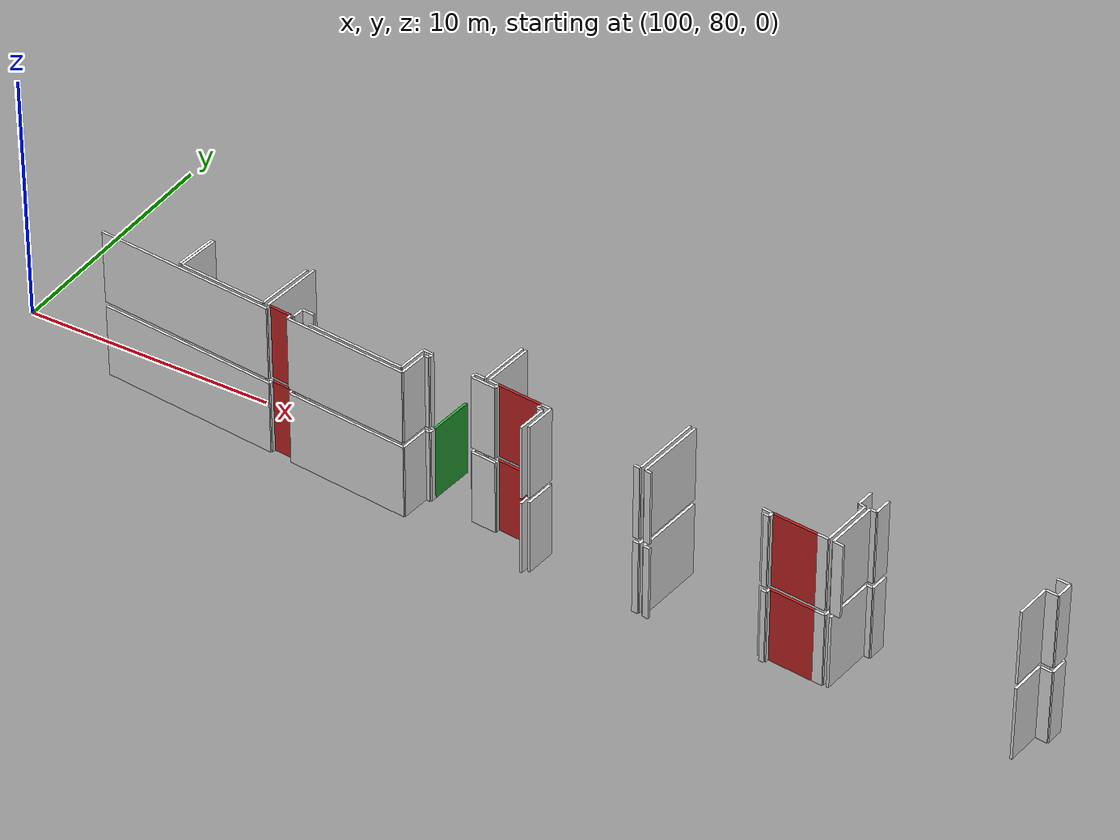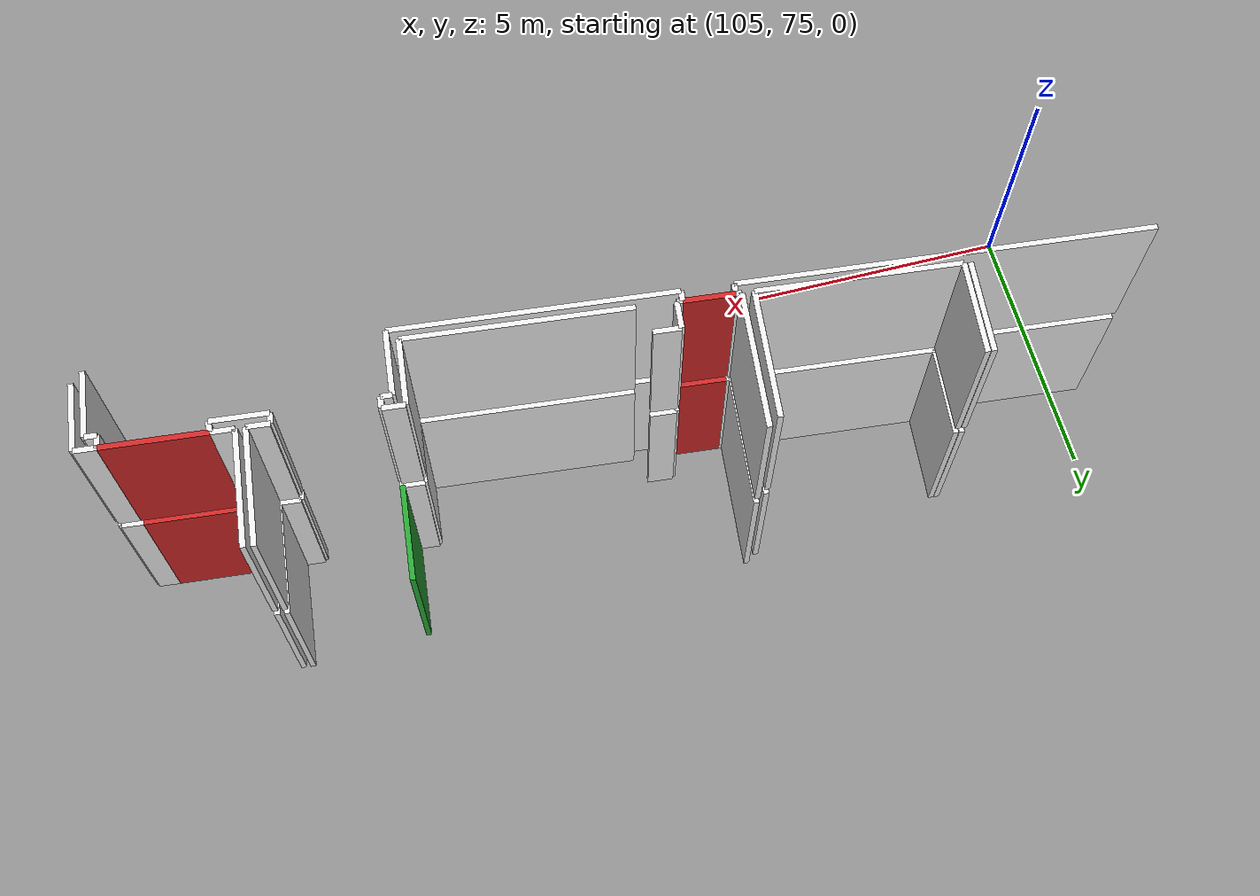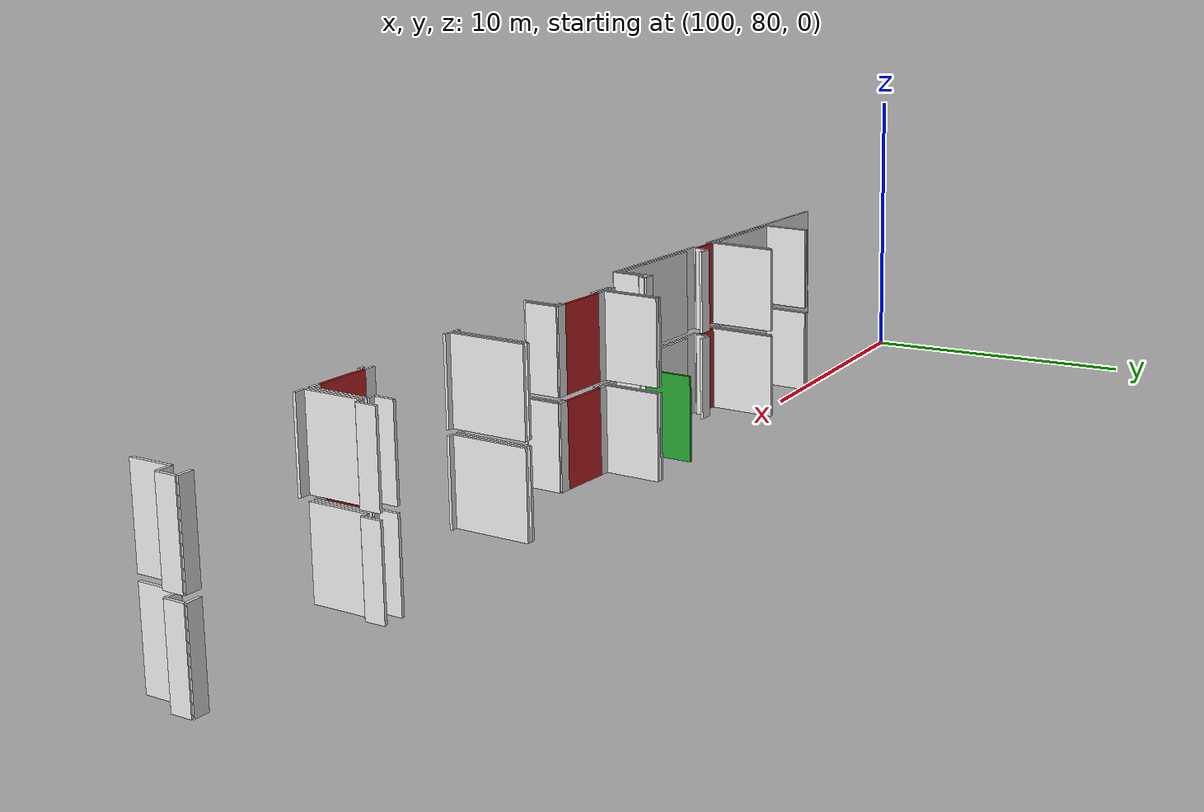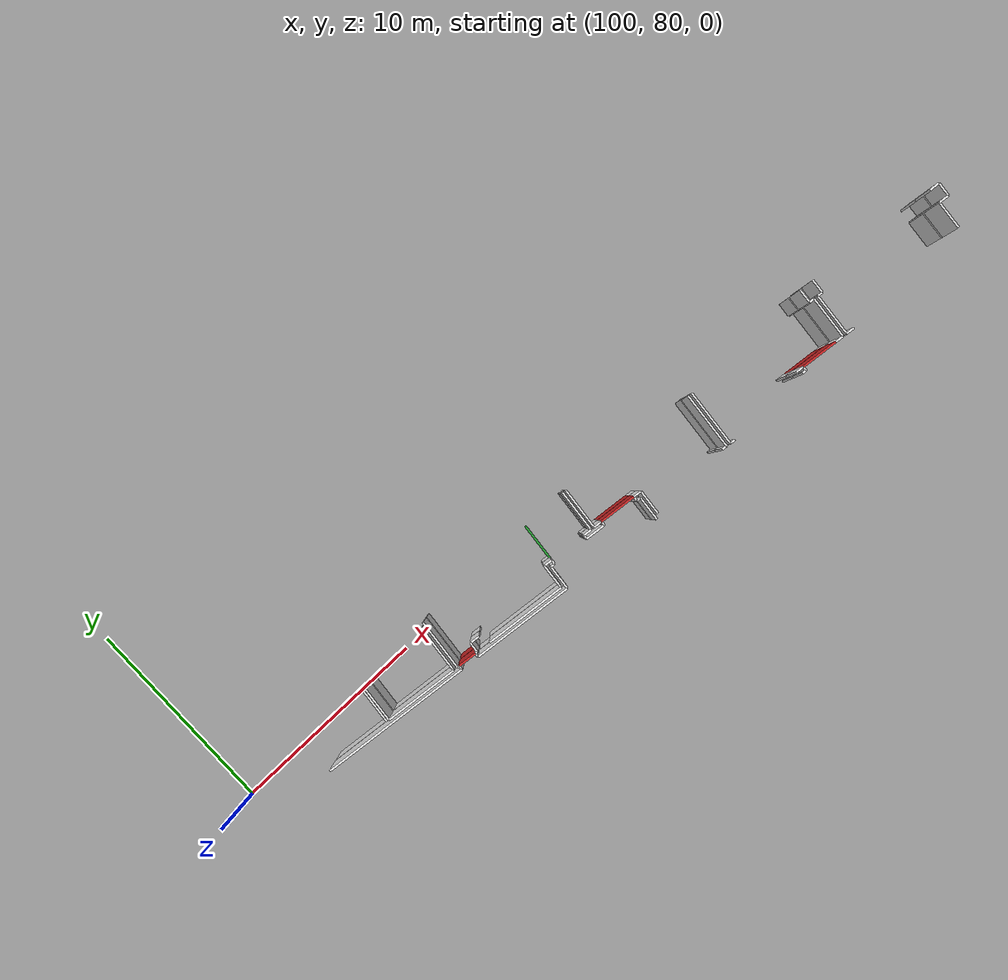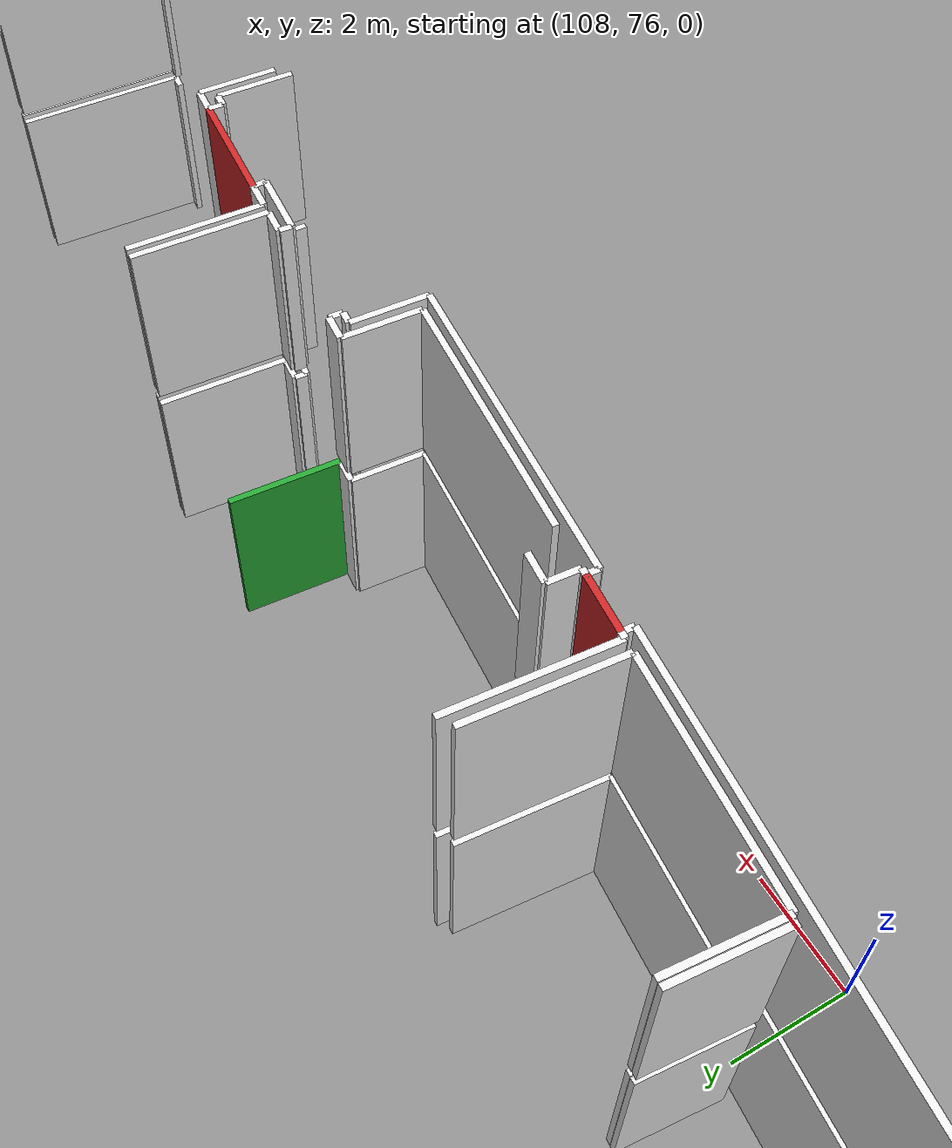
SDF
<sdf version="1.6">
 <world name="default">
  <model name="wall_132.7_77.1_0.0">
   <static>true</static>
   <pose>132.7049999999872 77.07000000006519 1.5 0 0 -0.10022174987377463</pose>
   <link name="link">
    <visual name="visual">
     <geometry><box><size>1.7990275150717767 0.1 3</size></box></geometry>
     <material>
      <script><uri>file://media/materials/scripts/gazebo.material</uri><name>Gazebo/Red</name></script>
     </material>
    </visual>
   </link>
  </model>
  <model name="wall_112.2_77.9_0.0">
   <static>true</static>
   <pose>112.1699999999837 77.92500000004657 1.5 0 0 -0.09966865283695012</pose>
   <link name="link">
    <visual name="visual">
     <geometry><box><size>0.9044888059555555 0.1 3</size></box></geometry>
     <material>
      <script><uri>file://media/materials/scripts/gazebo.material</uri><name>Gazebo/Red</name></script>
     </material>
    </visual>
   </link>
  </model>
  <model name="wall_121.5_78.2_0.0">
   <static>true</static>
   <pose>121.54000000000815 78.20999999996275 1.5 0 0 -0.09966865232787321</pose>
   <link name="link">
    <visual name="visual">
     <geometry><box><size>1.808977611760522 0.1 3</size></box></geometry>
     <material>
      <script><uri>file://media/materials/scripts/gazebo.material</uri><name>Gazebo/Red</name></script>
     </material>
    </visual>
   </link>
  </model>
  <model name="wall_118.0_79.5_0.0">
   <static>true</static>
   <pose>117.96999999985565 79.46499999985099 1.5 0 0 1.470574577181901</pose>
   <link name="link">
    <visual name="visual">
     <geometry><box><size>1.799027515083101 0.1 3</size></box></geometry>
     <material>
      <script><uri>file://media/materials/scripts/gazebo.material</uri><name>Gazebo/Green</name></script>
     </material>
    </visual>
   </link>
  </model>
  <model name="wall_134.3_78.0_0.0">
   <static>true</static>
   <pose>134.30499999999302 77.95999999996275 1.5 0 0 1.4701757469590804</pose>
   <link name="link">
    <visual name="visual">
     <geometry><box><size>2.090574083904777 0.1 3</size></box></geometry>
     <material>
      <script><uri>file://media/materials/scripts/gazebo.material</uri><name>Gazebo/White</name></script>
     </material>
    </visual>
   </link>
  </model>
  <model name="wall_134.5_79.0_0.0">
   <static>true</static>
   <pose>134.5349999999744 78.98500000010245 1.5 0 0 -0.11942892521040878</pose>
   <link name="link">
    <visual name="visual">
     <geometry><box><size>0.2517935662158716 0.1 3</size></box></geometry>
     <material>
      <script><uri>file://media/materials/scripts/gazebo.material</uri><name>Gazebo/White</name></script>
     </material>
    </visual>
   </link>
  </model>
  <model name="wall_134.7_79.3_0.0">
   <static>true</static>
   <pose>134.69499999997788 79.32000000006519 1.5 0 0 1.4711276742543362</pose>
   <link name="link">
    <visual name="visual">
     <geometry><box><size>0.7034912932011471 0.1 3</size></box></geometry>
     <material>
      <script><uri>file://media/materials/scripts/gazebo.material</uri><name>Gazebo/White</name></script>
     </material>
    </visual>
   </link>
  </model>
  <model name="wall_133.8_77.0_0.0">
   <static>true</static>
   <pose>133.79999999998836 76.95999999996275 1.5 0 0 -0.09966865257760905</pose>
   <link name="link">
    <visual name="visual">
     <geometry><box><size>0.40199502487170996 0.1 3</size></box></geometry>
     <material>
      <script><uri>file://media/materials/scripts/gazebo.material</uri><name>Gazebo/White</name></script>
     </material>
    </visual>
   </link>
  </model>
  <model name="wall_134.1_78.0_0.0">
   <static>true</static>
   <pose>134.10500000001048 77.97999999998137 1.5 0 0 1.4701757469313783</pose>
   <link name="link">
    <visual name="visual">
     <geometry><box><size>2.0905740839106244 0.1 3</size></box></geometry>
     <material>
      <script><uri>file://media/materials/scripts/gazebo.material</uri><name>Gazebo/White</name></script>
     </material>
    </visual>
   </link>
  </model>
  <model name="wall_134.1_79.0_0.0">
   <static>true</static>
   <pose>134.08500000002095 79.03000000002794 1.5 0 0 3.061762667803524</pose>
   <link name="link">
    <visual name="visual">
     <geometry><box><size>0.25079872408117443 0.1 3</size></box></geometry>
     <material>
      <script><uri>file://media/materials/scripts/gazebo.material</uri><name>Gazebo/White</name></script>
     </material>
    </visual>
   </link>
  </model>
  <model name="wall_134.0_79.4_0.0">
   <static>true</static>
   <pose>133.99500000002445 79.39000000013039 1.5 0 0 1.4711276743202006</pose>
   <link name="link">
    <visual name="visual">
     <geometry><box><size>0.7034912936644975 0.1 3</size></box></geometry>
     <material>
      <script><uri>file://media/materials/scripts/gazebo.material</uri><name>Gazebo/White</name></script>
     </material>
    </visual>
   </link>
  </model>
  <model name="wall_127.3_78.3_0.0">
   <static>true</static>
   <pose>127.29000000000815 78.31000000005588 1.5 0 0 -1.6711772298577363</pose>
   <link name="link">
    <visual name="visual">
     <geometry><box><size>2.7940651390819315 0.1 3</size></box></geometry>
     <material>
      <script><uri>file://media/materials/scripts/gazebo.material</uri><name>Gazebo/White</name></script>
     </material>
    </visual>
   </link>
  </model>
  <model name="wall_127.3_76.9_0.0">
   <static>true</static>
   <pose>127.27500000002328 76.90500000002794 1.5 0 0 -0.11942892521040878</pose>
   <link name="link">
    <visual name="visual">
     <geometry><box><size>0.2517935662158716 0.1 3</size></box></geometry>
     <material>
      <script><uri>file://media/materials/scripts/gazebo.material</uri><name>Gazebo/White</name></script>
     </material>
    </visual>
   </link>
  </model>
  <model name="wall_131.6_77.2_0.0">
   <static>true</static>
   <pose>131.60999999998603 77.18000000016764 1.5 0 0 -0.09966865257760905</pose>
   <link name="link">
    <visual name="visual">
     <geometry><box><size>0.40199502487170996 0.1 3</size></box></geometry>
     <material>
      <script><uri>file://media/materials/scripts/gazebo.material</uri><name>Gazebo/White</name></script>
     </material>
    </visual>
   </link>
  </model>
  <model name="wall_111.7_79.2_0.0">
   <static>true</static>
   <pose>111.74499999999534 79.22500000009313 1.5 0 0 -1.6708625935702974</pose>
   <link name="link">
    <visual name="visual">
     <geometry><box><size>2.502518731421029 0.1 3</size></box></geometry>
     <material>
      <script><uri>file://media/materials/scripts/gazebo.material</uri><name>Gazebo/White</name></script>
     </material>
    </visual>
   </link>
  </model>
  <model name="wall_111.7_78.0_0.0">
   <static>true</static>
   <pose>111.6699999999837 77.97500000009313 1.5 0 0 -0.09966865030117082</pose>
   <link name="link">
    <visual name="visual">
     <geometry><box><size>0.10049875616580058 0.1 3</size></box></geometry>
     <material>
      <script><uri>file://media/materials/scripts/gazebo.material</uri><name>Gazebo/White</name></script>
     </material>
    </visual>
   </link>
  </model>
  <model name="wall_112.7_77.9_0.0">
   <static>true</static>
   <pose>112.6699999999837 77.875 1.5 0 0 -0.09966865030117082</pose>
   <link name="link">
    <visual name="visual">
     <geometry><box><size>0.10049875616580058 0.1 3</size></box></geometry>
     <material>
      <script><uri>file://media/materials/scripts/gazebo.material</uri><name>Gazebo/White</name></script>
     </material>
    </visual>
   </link>
  </model>
  <model name="wall_112.7_78.1_0.0">
   <static>true</static>
   <pose>112.74499999999534 78.12000000011176 1.5 0 0 1.4711276742115245</pose>
   <link name="link">
    <visual name="visual">
     <geometry><box><size>0.502493781060678 0.1 3</size></box></geometry>
     <material>
      <script><uri>file://media/materials/scripts/gazebo.material</uri><name>Gazebo/White</name></script>
     </material>
    </visual>
   </link>
  </model>
  <model name="wall_113.0_78.3_0.0">
   <static>true</static>
   <pose>113.01500000001397 78.34499999997206 1.5 0 0 -0.1016888523293181</pose>
   <link name="link">
    <visual name="visual">
     <geometry><box><size>0.49254441426008755 0.1 3</size></box></geometry>
     <material>
      <script><uri>file://media/materials/scripts/gazebo.material</uri><name>Gazebo/White</name></script>
     </material>
    </visual>
   </link>
  </model>
  <model name="wall_107.8_79.2_0.0">
   <static>true</static>
   <pose>107.80499999999302 79.2249999998603 1.5 0 0 1.4705418512614783</pose>
   <link name="link">
    <visual name="visual">
     <geometry><box><size>1.6985287750948987 0.1 3</size></box></geometry>
     <material>
      <script><uri>file://media/materials/scripts/gazebo.material</uri><name>Gazebo/White</name></script>
     </material>
    </visual>
   </link>
  </model>
  <model name="wall_107.9_79.2_0.0">
   <static>true</static>
   <pose>107.91500000000815 79.20999999996275 1.5 0 0 -1.6704649792657182</pose>
   <link name="link">
    <visual name="visual">
     <geometry><box><size>1.7084788557742698 0.1 3</size></box></geometry>
     <material>
      <script><uri>file://media/materials/scripts/gazebo.material</uri><name>Gazebo/White</name></script>
     </material>
    </visual>
   </link>
  </model>
  <model name="wall_109.6_78.2_0.0">
   <static>true</static>
   <pose>109.61999999999534 78.17999999993481 1.5 0 0 -0.1002217497450038</pose>
   <link name="link">
    <visual name="visual">
     <geometry><box><size>3.5980550300969623 0.1 3</size></box></geometry>
     <material>
      <script><uri>file://media/materials/scripts/gazebo.material</uri><name>Gazebo/White</name></script>
     </material>
    </visual>
   </link>
  </model>
  <model name="wall_111.5_79.2_0.0">
   <static>true</static>
   <pose>111.52999999999884 79.1699999999255 1.5 0 0 1.4685896086605021</pose>
   <link name="link">
    <visual name="visual">
     <geometry><box><size>2.3522754939262738 0.1 3</size></box></geometry>
     <material>
      <script><uri>file://media/materials/scripts/gazebo.material</uri><name>Gazebo/White</name></script>
     </material>
    </visual>
   </link>
  </model>
  <model name="wall_120.4_78.3_0.0">
   <static>true</static>
   <pose>120.44000000000233 78.31999999983236 1.5 0 0 -0.09966865257760905</pose>
   <link name="link">
    <visual name="visual">
     <geometry><box><size>0.40199502487170996 0.1 3</size></box></geometry>
     <material>
      <script><uri>file://media/materials/scripts/gazebo.material</uri><name>Gazebo/White</name></script>
     </material>
    </visual>
   </link>
  </model>
  <model name="wall_122.6_78.1_0.0">
   <static>true</static>
   <pose>122.63500000000931 78.10000000009313 1.5 0 0 -0.10220671819814384</pose>
   <link name="link">
    <visual name="visual">
     <geometry><box><size>0.392045915695951 0.1 3</size></box></geometry>
     <material>
      <script><uri>file://media/materials/scripts/gazebo.material</uri><name>Gazebo/White</name></script>
     </material>
    </visual>
   </link>
  </model>
  <model name="wall_122.8_77.5_0.0">
   <static>true</static>
   <pose>122.77000000001863 77.47500000009313 1.5 0 0 -1.6696466488623756</pose>
   <link name="link">
    <visual name="visual">
     <geometry><box><size>1.2159358535337013 0.1 3</size></box></geometry>
     <material>
      <script><uri>file://media/materials/scripts/gazebo.material</uri><name>Gazebo/White</name></script>
     </material>
    </visual>
   </link>
  </model>
  <model name="wall_126.8_77.0_0.0">
   <static>true</static>
   <pose>126.8300000000163 76.9550000000745 1.5 0 0 -0.1243549956213644</pose>
   <link name="link">
    <visual name="visual">
     <geometry><box><size>0.24186773247205975 0.1 3</size></box></geometry>
     <material>
      <script><uri>file://media/materials/scripts/gazebo.material</uri><name>Gazebo/White</name></script>
     </material>
    </visual>
   </link>
  </model>
  <model name="wall_127.1_78.3_0.0">
   <static>true</static>
   <pose>127.08999999999651 78.3300000000745 1.5 0 0 1.470415423732057</pose>
   <link name="link">
    <visual name="visual">
     <geometry><box><size>2.7940651390819315 0.1 3</size></box></geometry>
     <material>
      <script><uri>file://media/materials/scripts/gazebo.material</uri><name>Gazebo/White</name></script>
     </material>
    </visual>
   </link>
  </model>
  <model name="wall_120.3_79.4_0.0">
   <static>true</static>
   <pose>120.34500000000116 79.36999999987893 1.5 0 0 -1.672387129737302</pose>
   <link name="link">
    <visual name="visual">
     <geometry><box><size>2.070676218108235 0.1 3</size></box></geometry>
     <material>
      <script><uri>file://media/materials/scripts/gazebo.material</uri><name>Gazebo/White</name></script>
     </material>
    </visual>
   </link>
  </model>
  <model name="wall_119.9_78.4_0.0">
   <static>true</static>
   <pose>119.86999999999534 78.37000000011176 1.5 0 0 -0.09966865257760905</pose>
   <link name="link">
    <visual name="visual">
     <geometry><box><size>0.40199502487170996 0.1 3</size></box></geometry>
     <material>
      <script><uri>file://media/materials/scripts/gazebo.material</uri><name>Gazebo/White</name></script>
     </material>
    </visual>
   </link>
  </model>
  <model name="wall_120.2_79.4_0.0">
   <static>true</static>
   <pose>120.17500000001746 79.38500000000931 1.5 0 0 1.469692955040446</pose>
   <link name="link">
    <visual name="visual">
     <geometry><box><size>2.0806249059632975 0.1 3</size></box></geometry>
     <material>
      <script><uri>file://media/materials/scripts/gazebo.material</uri><name>Gazebo/White</name></script>
     </material>
    </visual>
   </link>
  </model>
  <model name="wall_115.4_77.6_0.0">
   <static>true</static>
   <pose>115.38499999998021 77.5999999998603 1.5 0 0 -0.10092178464365997</pose>
   <link name="link">
    <visual name="visual">
     <geometry><box><size>3.9702015062232627 0.1 3</size></box></geometry>
     <material>
      <script><uri>file://media/materials/scripts/gazebo.material</uri><name>Gazebo/White</name></script>
     </material>
    </visual>
   </link>
  </model>
  <model name="wall_117.4_78.0_0.0">
   <static>true</static>
   <pose>117.4199999999837 78.00499999988824 1.5 0 0 1.4719460047274175</pose>
   <link name="link">
    <visual name="visual">
     <geometry><box><size>1.2159358535337013 0.1 3</size></box></geometry>
     <material>
      <script><uri>file://media/materials/scripts/gazebo.material</uri><name>Gazebo/White</name></script>
     </material>
    </visual>
   </link>
  </model>
  <model name="wall_117.7_78.6_0.0">
   <static>true</static>
   <pose>117.67999999999302 78.58999999985099 1.5 0 0 -0.09966865257760905</pose>
   <link name="link">
    <visual name="visual">
     <geometry><box><size>0.40199502487170996 0.1 3</size></box></geometry>
     <material>
      <script><uri>file://media/materials/scripts/gazebo.material</uri><name>Gazebo/White</name></script>
     </material>
    </visual>
   </link>
  </model>
  <model name="wall_141.5_79.0_0.0">
   <static>true</static>
   <pose>141.46000000002095 78.97999999998137 1.5 0 0 -0.07982998578626932</pose>
   <link name="link">
    <visual name="visual">
     <geometry><box><size>0.5015974481623489 0.1 3</size></box></geometry>
     <material>
      <script><uri>file://media/materials/scripts/gazebo.material</uri><name>Gazebo/White</name></script>
     </material>
    </visual>
   </link>
  </model>
  <model name="wall_141.7_78.6_0.0">
   <static>true</static>
   <pose>141.67500000001746 78.61499999999069 1.5 0 0 -1.6718996985493473</pose>
   <link name="link">
    <visual name="visual">
     <geometry><box><size>0.693541635321099 0.1 3</size></box></geometry>
     <material>
      <script><uri>file://media/materials/scripts/gazebo.material</uri><name>Gazebo/White</name></script>
     </material>
    </visual>
   </link>
  </model>
  <model name="wall_141.4_78.3_0.0">
   <static>true</static>
   <pose>141.39000000001397 78.2949999999255 1.5 0 0 3.0419240014674718</pose>
   <link name="link">
    <visual name="visual">
     <geometry><box><size>0.5024937810375105 0.1 3</size></box></geometry>
     <material>
      <script><uri>file://media/materials/scripts/gazebo.material</uri><name>Gazebo/White</name></script>
     </material>
    </visual>
   </link>
  </model>
  <model name="wall_141.1_77.6_0.0">
   <static>true</static>
   <pose>141.07000000000698 77.625 1.5 0 0 -1.671177229911867</pose>
   <link name="link">
    <visual name="visual">
     <geometry><box><size>1.3970325690805652 0.1 3</size></box></geometry>
     <material>
      <script><uri>file://media/materials/scripts/gazebo.material</uri><name>Gazebo/White</name></script>
     </material>
    </visual>
   </link>
  </model>
  <model name="wall_131.8_77.1_0.0">
   <static>true</static>
   <pose>131.79999999998836 77.06000000005588 1.5 0 0 -1.6704649792860586</pose>
   <link name="link">
    <visual name="visual">
     <geometry><box><size>0.20099751260961132 0.1 3</size></box></geometry>
     <material>
      <script><uri>file://media/materials/scripts/gazebo.material</uri><name>Gazebo/White</name></script>
     </material>
    </visual>
   </link>
  </model>
  <model name="wall_131.7_77.0_0.0">
   <static>true</static>
   <pose>131.69000000000233 76.96999999997206 1.5 0 0 3.0419240009833683</pose>
   <link name="link">
    <visual name="visual">
     <geometry><box><size>0.20099751237793617 0.1 3</size></box></geometry>
     <material>
      <script><uri>file://media/materials/scripts/gazebo.material</uri><name>Gazebo/White</name></script>
     </material>
    </visual>
   </link>
  </model>
  <model name="wall_122.6_77.3_0.0">
   <static>true</static>
   <pose>122.55999999999767 77.28499999991618 1.5 0 0 1.470295727739453</pose>
   <link name="link">
    <visual name="visual">
     <geometry><box><size>1.1960351164852516 0.1 3</size></box></geometry>
     <material>
      <script><uri>file://media/materials/scripts/gazebo.material</uri><name>Gazebo/White</name></script>
     </material>
    </visual>
   </link>
  </model>
  <model name="wall_122.5_77.9_0.0">
   <static>true</static>
   <pose>122.51499999998487 77.88999999989755 1.5 0 0 3.0466409471685547</pose>
   <link name="link">
    <visual name="visual">
     <geometry><box><size>0.21095023111991618 0.1 3</size></box></geometry>
     <material>
      <script><uri>file://media/materials/scripts/gazebo.material</uri><name>Gazebo/White</name></script>
     </material>
    </visual>
   </link>
  </model>
  <model name="wall_122.4_78.0_0.0">
   <static>true</static>
   <pose>122.42499999998836 78.01000000000931 1.5 0 0 1.4352686128093959</pose>
   <link name="link">
    <visual name="visual">
     <geometry><box><size>0.22203603331853233 0.1 3</size></box></geometry>
     <material>
      <script><uri>file://media/materials/scripts/gazebo.material</uri><name>Gazebo/White</name></script>
     </material>
    </visual>
   </link>
  </model>
  <model name="wall_120.6_78.2_0.0">
   <static>true</static>
   <pose>120.64000000001397 78.19999999995343 1.5 0 0 -1.5707963267948966</pose>
   <link name="link">
    <visual name="visual">
     <geometry><box><size>0.19999999972060323 0.1 3</size></box></geometry>
     <material>
      <script><uri>file://media/materials/scripts/gazebo.material</uri><name>Gazebo/White</name></script>
     </material>
    </visual>
   </link>
  </model>
  <model name="wall_120.1_78.2_0.0">
   <static>true</static>
   <pose>120.14500000001863 78.1500000001397 1.5 0 0 3.040924001337901</pose>
   <link name="link">
    <visual name="visual">
     <geometry><box><size>0.9950376877285535 0.1 3</size></box></geometry>
     <material>
      <script><uri>file://media/materials/scripts/gazebo.material</uri><name>Gazebo/White</name></script>
     </material>
    </visual>
   </link>
  </model>
  <model name="wall_119.7_78.3_0.0">
   <static>true</static>
   <pose>119.66000000000349 78.29500000015832 1.5 0 0 1.4659193882400832</pose>
   <link name="link">
    <visual name="visual">
     <geometry><box><size>0.19104973168571213 0.1 3</size></box></geometry>
     <material>
      <script><uri>file://media/materials/scripts/gazebo.material</uri><name>Gazebo/White</name></script>
     </material>
    </visual>
   </link>
  </model>
  <model name="wall_117.9_78.5_0.0">
   <static>true</static>
   <pose>117.86999999999534 78.46499999985099 1.5 0 0 -1.665748033242296</pose>
   <link name="link">
    <visual name="visual">
     <geometry><box><size>0.21095023106197072 0.1 3</size></box></geometry>
     <material>
      <script><uri>file://media/materials/scripts/gazebo.material</uri><name>Gazebo/White</name></script>
     </material>
    </visual>
   </link>
  </model>
  <model name="wall_117.8_78.4_0.0">
   <static>true</static>
   <pose>117.75999999998021 78.36999999987893 1.5 0 0 3.0419240010121844</pose>
   <link name="link">
    <visual name="visual">
     <geometry><box><size>0.20099751243585498 0.1 3</size></box></geometry>
     <material>
      <script><uri>file://media/materials/scripts/gazebo.material</uri><name>Gazebo/White</name></script>
     </material>
    </visual>
   </link>
  </model>
  <model name="wall_117.6_77.8_0.0">
   <static>true</static>
   <pose>117.59999999997672 77.78499999991618 1.5 0 0 -1.6712969258503403</pose>
   <link name="link">
    <visual name="visual">
     <geometry><box><size>1.1960351164852516 0.1 3</size></box></geometry>
     <material>
      <script><uri>file://media/materials/scripts/gazebo.material</uri><name>Gazebo/White</name></script>
     </material>
    </visual>
   </link>
  </model>
  <model name="wall_115.1_77.4_0.0">
   <static>true</static>
   <pose>115.06999999997788 77.43999999994412 1.5 0 0 3.0407215968685284</pose>
   <link name="link">
    <visual name="visual">
     <geometry><box><size>4.965239168461375 0.1 3</size></box></geometry>
     <material>
      <script><uri>file://media/materials/scripts/gazebo.material</uri><name>Gazebo/White</name></script>
     </material>
    </visual>
   </link>
  </model>
  <model name="wall_112.6_77.8_0.0">
   <static>true</static>
   <pose>112.60999999998603 77.78499999991618 1.5 0 0 1.4659193879370842</pose>
   <link name="link">
    <visual name="visual">
     <geometry><box><size>0.19104973169180559 0.1 3</size></box></geometry>
     <material>
      <script><uri>file://media/materials/scripts/gazebo.material</uri><name>Gazebo/White</name></script>
     </material>
    </visual>
   </link>
  </model>
  <model name="wall_111.7_77.9_0.0">
   <static>true</static>
   <pose>111.70999999999185 77.875 1.5 0 0 -1.6756732650945534</pose>
   <link name="link">
    <visual name="visual">
     <geometry><box><size>0.19104973214881482 0.1 3</size></box></geometry>
     <material>
      <script><uri>file://media/materials/scripts/gazebo.material</uri><name>Gazebo/White</name></script>
     </material>
    </visual>
   </link>
  </model>
  <model name="wall_108.1_78.1_0.0">
   <static>true</static>
   <pose>108.05000000001746 78.1449999997858 1.5 0 0 3.0419240011009996</pose>
   <link name="link">
    <visual name="visual">
     <geometry><box><size>7.336409203404813 0.1 3</size></box></geometry>
     <material>
      <script><uri>file://media/materials/scripts/gazebo.material</uri><name>Gazebo/White</name></script>
     </material>
    </visual>
   </link>
  </model>
  <model name="wall_132.7_77.1_3.2">
   <static>true</static>
   <pose>132.7049999999872 77.07000000006519 4.7 0 0 -0.10022174987377463</pose>
   <link name="link">
    <visual name="visual">
     <geometry><box><size>1.7990275150717767 0.1 3</size></box></geometry>
     <material>
      <script><uri>file://media/materials/scripts/gazebo.material</uri><name>Gazebo/Red</name></script>
     </material>
    </visual>
   </link>
  </model>
  <model name="wall_112.2_77.9_3.2">
   <static>true</static>
   <pose>112.1699999999837 77.92500000004657 4.7 0 0 -0.09966865283695012</pose>
   <link name="link">
    <visual name="visual">
     <geometry><box><size>0.9044888059555555 0.1 3</size></box></geometry>
     <material>
      <script><uri>file://media/materials/scripts/gazebo.material</uri><name>Gazebo/Red</name></script>
     </material>
    </visual>
   </link>
  </model>
  <model name="wall_121.5_78.2_3.2">
   <static>true</static>
   <pose>121.54000000000815 78.20999999996275 4.7 0 0 -0.09966865232787321</pose>
   <link name="link">
    <visual name="visual">
     <geometry><box><size>1.808977611760522 0.1 3</size></box></geometry>
     <material>
      <script><uri>file://media/materials/scripts/gazebo.material</uri><name>Gazebo/Red</name></script>
     </material>
    </visual>
   </link>
  </model>
  <model name="wall_134.4_76.9_3.2">
   <static>true</static>
   <pose>134.39999999999418 76.89999999990687 4.7 0 0 3.0419240009977764</pose>
   <link name="link">
    <visual name="visual">
     <geometry><box><size>0.4019950248137912 0.1 3</size></box></geometry>
     <material>
      <script><uri>file://media/materials/scripts/gazebo.material</uri><name>Gazebo/White</name></script>
     </material>
    </visual>
   </link>
  </model>
  <model name="wall_134.3_78.0_3.2">
   <static>true</static>
   <pose>134.30499999999302 77.95999999996275 4.7 0 0 1.4701757469590804</pose>
   <link name="link">
    <visual name="visual">
     <geometry><box><size>2.090574083904777 0.1 3</size></box></geometry>
     <material>
      <script><uri>file://media/materials/scripts/gazebo.material</uri><name>Gazebo/White</name></script>
     </material>
    </visual>
   </link>
  </model>
  <model name="wall_134.5_79.0_3.2">
   <static>true</static>
   <pose>134.5349999999744 78.98500000010245 4.7 0 0 -0.11942892521040878</pose>
   <link name="link">
    <visual name="visual">
     <geometry><box><size>0.2517935662158716 0.1 3</size></box></geometry>
     <material>
      <script><uri>file://media/materials/scripts/gazebo.material</uri><name>Gazebo/White</name></script>
     </material>
    </visual>
   </link>
  </model>
  <model name="wall_134.7_79.3_3.2">
   <static>true</static>
   <pose>134.69499999997788 79.32000000006519 4.7 0 0 1.4711276742543362</pose>
   <link name="link">
    <visual name="visual">
     <geometry><box><size>0.7034912932011471 0.1 3</size></box></geometry>
     <material>
      <script><uri>file://media/materials/scripts/gazebo.material</uri><name>Gazebo/White</name></script>
     </material>
    </visual>
   </link>
  </model>
  <model name="wall_133.8_77.0_3.2">
   <static>true</static>
   <pose>133.79999999998836 76.95999999996275 4.7 0 0 -0.09966865257760905</pose>
   <link name="link">
    <visual name="visual">
     <geometry><box><size>0.40199502487170996 0.1 3</size></box></geometry>
     <material>
      <script><uri>file://media/materials/scripts/gazebo.material</uri><name>Gazebo/White</name></script>
     </material>
    </visual>
   </link>
  </model>
  <model name="wall_134.1_78.0_3.2">
   <static>true</static>
   <pose>134.10500000001048 77.97999999998137 4.7 0 0 1.4701757469313783</pose>
   <link name="link">
    <visual name="visual">
     <geometry><box><size>2.0905740839106244 0.1 3</size></box></geometry>
     <material>
      <script><uri>file://media/materials/scripts/gazebo.material</uri><name>Gazebo/White</name></script>
     </material>
    </visual>
   </link>
  </model>
  <model name="wall_134.1_79.0_3.2">
   <static>true</static>
   <pose>134.08500000002095 79.03000000002794 4.7 0 0 3.061762667803524</pose>
   <link name="link">
    <visual name="visual">
     <geometry><box><size>0.25079872408117443 0.1 3</size></box></geometry>
     <material>
      <script><uri>file://media/materials/scripts/gazebo.material</uri><name>Gazebo/White</name></script>
     </material>
    </visual>
   </link>
  </model>
  <model name="wall_134.0_79.4_3.2">
   <static>true</static>
   <pose>133.99500000002445 79.39000000013039 4.7 0 0 1.4711276743202006</pose>
   <link name="link">
    <visual name="visual">
     <geometry><box><size>0.7034912936644975 0.1 3</size></box></geometry>
     <material>
      <script><uri>file://media/materials/scripts/gazebo.material</uri><name>Gazebo/White</name></script>
     </material>
    </visual>
   </link>
  </model>
  <model name="wall_127.3_78.3_3.2">
   <static>true</static>
   <pose>127.29000000000815 78.31000000005588 4.7 0 0 -1.6711772298577363</pose>
   <link name="link">
    <visual name="visual">
     <geometry><box><size>2.7940651390819315 0.1 3</size></box></geometry>
     <material>
      <script><uri>file://media/materials/scripts/gazebo.material</uri><name>Gazebo/White</name></script>
     </material>
    </visual>
   </link>
  </model>
  <model name="wall_127.3_76.9_3.2">
   <static>true</static>
   <pose>127.27500000002328 76.90500000002794 4.7 0 0 -0.11942892521040878</pose>
   <link name="link">
    <visual name="visual">
     <geometry><box><size>0.2517935662158716 0.1 3</size></box></geometry>
     <material>
      <script><uri>file://media/materials/scripts/gazebo.material</uri><name>Gazebo/White</name></script>
     </material>
    </visual>
   </link>
  </model>
  <model name="wall_131.6_77.2_3.2">
   <static>true</static>
   <pose>131.60999999998603 77.18000000016764 4.7 0 0 -0.09966865257760905</pose>
   <link name="link">
    <visual name="visual">
     <geometry><box><size>0.40199502487170996 0.1 3</size></box></geometry>
     <material>
      <script><uri>file://media/materials/scripts/gazebo.material</uri><name>Gazebo/White</name></script>
     </material>
    </visual>
   </link>
  </model>
  <model name="wall_111.7_79.2_3.2">
   <static>true</static>
   <pose>111.74499999999534 79.22500000009313 4.7 0 0 -1.6708625935702974</pose>
   <link name="link">
    <visual name="visual">
     <geometry><box><size>2.502518731421029 0.1 3</size></box></geometry>
     <material>
      <script><uri>file://media/materials/scripts/gazebo.material</uri><name>Gazebo/White</name></script>
     </material>
    </visual>
   </link>
  </model>
  <model name="wall_111.7_78.0_3.2">
   <static>true</static>
   <pose>111.6699999999837 77.97500000009313 4.7 0 0 -0.09966865030117082</pose>
   <link name="link">
    <visual name="visual">
     <geometry><box><size>0.10049875616580058 0.1 3</size></box></geometry>
     <material>
      <script><uri>file://media/materials/scripts/gazebo.material</uri><name>Gazebo/White</name></script>
     </material>
    </visual>
   </link>
  </model>
  <model name="wall_112.7_77.9_3.2">
   <static>true</static>
   <pose>112.6699999999837 77.875 4.7 0 0 -0.09966865030117082</pose>
   <link name="link">
    <visual name="visual">
     <geometry><box><size>0.10049875616580058 0.1 3</size></box></geometry>
     <material>
      <script><uri>file://media/materials/scripts/gazebo.material</uri><name>Gazebo/White</name></script>
     </material>
    </visual>
   </link>
  </model>
  <model name="wall_112.7_78.1_3.2">
   <static>true</static>
   <pose>112.74499999999534 78.12000000011176 4.7 0 0 1.4711276742115245</pose>
   <link name="link">
    <visual name="visual">
     <geometry><box><size>0.502493781060678 0.1 3</size></box></geometry>
     <material>
      <script><uri>file://media/materials/scripts/gazebo.material</uri><name>Gazebo/White</name></script>
     </material>
    </visual>
   </link>
  </model>
  <model name="wall_113.0_78.3_3.2">
   <static>true</static>
   <pose>113.01500000001397 78.34499999997206 4.7 0 0 -0.1016888523293181</pose>
   <link name="link">
    <visual name="visual">
     <geometry><box><size>0.49254441426008755 0.1 3</size></box></geometry>
     <material>
      <script><uri>file://media/materials/scripts/gazebo.material</uri><name>Gazebo/White</name></script>
     </material>
    </visual>
   </link>
  </model>
  <model name="wall_107.8_79.2_3.2">
   <static>true</static>
   <pose>107.80499999999302 79.2249999998603 4.7 0 0 1.4705418512614783</pose>
   <link name="link">
    <visual name="visual">
     <geometry><box><size>1.6985287750948987 0.1 3</size></box></geometry>
     <material>
      <script><uri>file://media/materials/scripts/gazebo.material</uri><name>Gazebo/White</name></script>
     </material>
    </visual>
   </link>
  </model>
  <model name="wall_107.9_79.2_3.2">
   <static>true</static>
   <pose>107.91500000000815 79.20999999996275 4.7 0 0 -1.6704649792657182</pose>
   <link name="link">
    <visual name="visual">
     <geometry><box><size>1.7084788557742698 0.1 3</size></box></geometry>
     <material>
      <script><uri>file://media/materials/scripts/gazebo.material</uri><name>Gazebo/White</name></script>
     </material>
    </visual>
   </link>
  </model>
  <model name="wall_109.6_78.2_3.2">
   <static>true</static>
   <pose>109.61999999999534 78.17999999993481 4.7 0 0 -0.1002217497450038</pose>
   <link name="link">
    <visual name="visual">
     <geometry><box><size>3.5980550300969623 0.1 3</size></box></geometry>
     <material>
      <script><uri>file://media/materials/scripts/gazebo.material</uri><name>Gazebo/White</name></script>
     </material>
    </visual>
   </link>
  </model>
  <model name="wall_111.5_79.2_3.2">
   <static>true</static>
   <pose>111.52999999999884 79.1699999999255 4.7 0 0 1.4685896086605021</pose>
   <link name="link">
    <visual name="visual">
     <geometry><box><size>2.3522754939262738 0.1 3</size></box></geometry>
     <material>
      <script><uri>file://media/materials/scripts/gazebo.material</uri><name>Gazebo/White</name></script>
     </material>
    </visual>
   </link>
  </model>
  <model name="wall_120.4_78.3_3.2">
   <static>true</static>
   <pose>120.44000000000233 78.31999999983236 4.7 0 0 -0.09966865257760905</pose>
   <link name="link">
    <visual name="visual">
     <geometry><box><size>0.40199502487170996 0.1 3</size></box></geometry>
     <material>
      <script><uri>file://media/materials/scripts/gazebo.material</uri><name>Gazebo/White</name></script>
     </material>
    </visual>
   </link>
  </model>
  <model name="wall_122.6_78.1_3.2">
   <static>true</static>
   <pose>122.63500000000931 78.10000000009313 4.7 0 0 -0.10220671819814384</pose>
   <link name="link">
    <visual name="visual">
     <geometry><box><size>0.392045915695951 0.1 3</size></box></geometry>
     <material>
      <script><uri>file://media/materials/scripts/gazebo.material</uri><name>Gazebo/White</name></script>
     </material>
    </visual>
   </link>
  </model>
  <model name="wall_122.8_77.5_3.2">
   <static>true</static>
   <pose>122.77000000001863 77.47500000009313 4.7 0 0 -1.6696466488623756</pose>
   <link name="link">
    <visual name="visual">
     <geometry><box><size>1.2159358535337013 0.1 3</size></box></geometry>
     <material>
      <script><uri>file://media/materials/scripts/gazebo.material</uri><name>Gazebo/White</name></script>
     </material>
    </visual>
   </link>
  </model>
  <model name="wall_126.8_77.0_3.2">
   <static>true</static>
   <pose>126.8300000000163 76.9550000000745 4.7 0 0 -0.1243549956213644</pose>
   <link name="link">
    <visual name="visual">
     <geometry><box><size>0.24186773247205975 0.1 3</size></box></geometry>
     <material>
      <script><uri>file://media/materials/scripts/gazebo.material</uri><name>Gazebo/White</name></script>
     </material>
    </visual>
   </link>
  </model>
  <model name="wall_127.1_78.3_3.2">
   <static>true</static>
   <pose>127.08999999999651 78.3300000000745 4.7 0 0 1.470415423732057</pose>
   <link name="link">
    <visual name="visual">
     <geometry><box><size>2.7940651390819315 0.1 3</size></box></geometry>
     <material>
      <script><uri>file://media/materials/scripts/gazebo.material</uri><name>Gazebo/White</name></script>
     </material>
    </visual>
   </link>
  </model>
  <model name="wall_120.3_79.4_3.2">
   <static>true</static>
   <pose>120.34500000000116 79.36999999987893 4.7 0 0 -1.672387129737302</pose>
   <link name="link">
    <visual name="visual">
     <geometry><box><size>2.070676218108235 0.1 3</size></box></geometry>
     <material>
      <script><uri>file://media/materials/scripts/gazebo.material</uri><name>Gazebo/White</name></script>
     </material>
    </visual>
   </link>
  </model>
  <model name="wall_119.9_78.4_3.2">
   <static>true</static>
   <pose>119.86999999999534 78.37000000011176 4.7 0 0 -0.09966865257760905</pose>
   <link name="link">
    <visual name="visual">
     <geometry><box><size>0.40199502487170996 0.1 3</size></box></geometry>
     <material>
      <script><uri>file://media/materials/scripts/gazebo.material</uri><name>Gazebo/White</name></script>
     </material>
    </visual>
   </link>
  </model>
  <model name="wall_120.2_79.4_3.2">
   <static>true</static>
   <pose>120.17500000001746 79.38500000000931 4.7 0 0 1.469692955040446</pose>
   <link name="link">
    <visual name="visual">
     <geometry><box><size>2.0806249059632975 0.1 3</size></box></geometry>
     <material>
      <script><uri>file://media/materials/scripts/gazebo.material</uri><name>Gazebo/White</name></script>
     </material>
    </visual>
   </link>
  </model>
  <model name="wall_115.4_77.6_3.2">
   <static>true</static>
   <pose>115.38499999998021 77.5999999998603 4.7 0 0 -0.10092178464365997</pose>
   <link name="link">
    <visual name="visual">
     <geometry><box><size>3.9702015062232627 0.1 3</size></box></geometry>
     <material>
      <script><uri>file://media/materials/scripts/gazebo.material</uri><name>Gazebo/White</name></script>
     </material>
    </visual>
   </link>
  </model>
  <model name="wall_117.4_78.0_3.2">
   <static>true</static>
   <pose>117.4199999999837 78.00499999988824 4.7 0 0 1.4719460047274175</pose>
   <link name="link">
    <visual name="visual">
     <geometry><box><size>1.2159358535337013 0.1 3</size></box></geometry>
     <material>
      <script><uri>file://media/materials/scripts/gazebo.material</uri><name>Gazebo/White</name></script>
     </material>
    </visual>
   </link>
  </model>
  <model name="wall_117.7_78.6_3.2">
   <static>true</static>
   <pose>117.67999999999302 78.58999999985099 4.7 0 0 -0.09966865257760905</pose>
   <link name="link">
    <visual name="visual">
     <geometry><box><size>0.40199502487170996 0.1 3</size></box></geometry>
     <material>
      <script><uri>file://media/materials/scripts/gazebo.material</uri><name>Gazebo/White</name></script>
     </material>
    </visual>
   </link>
  </model>
  <model name="wall_141.5_79.0_3.2">
   <static>true</static>
   <pose>141.46000000002095 78.97999999998137 4.7 0 0 -0.07982998578626932</pose>
   <link name="link">
    <visual name="visual">
     <geometry><box><size>0.5015974481623489 0.1 3</size></box></geometry>
     <material>
      <script><uri>file://media/materials/scripts/gazebo.material</uri><name>Gazebo/White</name></script>
     </material>
    </visual>
   </link>
  </model>
  <model name="wall_141.7_78.6_3.2">
   <static>true</static>
   <pose>141.67500000001746 78.61499999999069 4.7 0 0 -1.6718996985493473</pose>
   <link name="link">
    <visual name="visual">
     <geometry><box><size>0.693541635321099 0.1 3</size></box></geometry>
     <material>
      <script><uri>file://media/materials/scripts/gazebo.material</uri><name>Gazebo/White</name></script>
     </material>
    </visual>
   </link>
  </model>
  <model name="wall_141.4_78.3_3.2">
   <static>true</static>
   <pose>141.39000000001397 78.2949999999255 4.7 0 0 3.0419240014674718</pose>
   <link name="link">
    <visual name="visual">
     <geometry><box><size>0.5024937810375105 0.1 3</size></box></geometry>
     <material>
      <script><uri>file://media/materials/scripts/gazebo.material</uri><name>Gazebo/White</name></script>
     </material>
    </visual>
   </link>
  </model>
  <model name="wall_141.1_77.6_3.2">
   <static>true</static>
   <pose>141.07000000000698 77.625 4.7 0 0 -1.671177229911867</pose>
   <link name="link">
    <visual name="visual">
     <geometry><box><size>1.3970325690805652 0.1 3</size></box></geometry>
     <material>
      <script><uri>file://media/materials/scripts/gazebo.material</uri><name>Gazebo/White</name></script>
     </material>
    </visual>
   </link>
  </model>
  <model name="wall_131.8_77.1_3.2">
   <static>true</static>
   <pose>131.79999999998836 77.06000000005588 4.7 0 0 -1.6704649792860586</pose>
   <link name="link">
    <visual name="visual">
     <geometry><box><size>0.20099751260961132 0.1 3</size></box></geometry>
     <material>
      <script><uri>file://media/materials/scripts/gazebo.material</uri><name>Gazebo/White</name></script>
     </material>
    </visual>
   </link>
  </model>
  <model name="wall_131.7_77.0_3.2">
   <static>true</static>
   <pose>131.69000000000233 76.96999999997206 4.7 0 0 3.0419240009833683</pose>
   <link name="link">
    <visual name="visual">
     <geometry><box><size>0.20099751237793617 0.1 3</size></box></geometry>
     <material>
      <script><uri>file://media/materials/scripts/gazebo.material</uri><name>Gazebo/White</name></script>
     </material>
    </visual>
   </link>
  </model>
  <model name="wall_122.6_77.3_3.2">
   <static>true</static>
   <pose>122.55999999999767 77.28499999991618 4.7 0 0 1.470295727739453</pose>
   <link name="link">
    <visual name="visual">
     <geometry><box><size>1.1960351164852516 0.1 3</size></box></geometry>
     <material>
      <script><uri>file://media/materials/scripts/gazebo.material</uri><name>Gazebo/White</name></script>
     </material>
    </visual>
   </link>
  </model>
  <model name="wall_122.5_77.9_3.2">
   <static>true</static>
   <pose>122.51499999998487 77.88999999989755 4.7 0 0 3.0466409471685547</pose>
   <link name="link">
    <visual name="visual">
     <geometry><box><size>0.21095023111991618 0.1 3</size></box></geometry>
     <material>
      <script><uri>file://media/materials/scripts/gazebo.material</uri><name>Gazebo/White</name></script>
     </material>
    </visual>
   </link>
  </model>
  <model name="wall_122.4_78.0_3.2">
   <static>true</static>
   <pose>122.42499999998836 78.01000000000931 4.7 0 0 1.4352686128093959</pose>
   <link name="link">
    <visual name="visual">
     <geometry><box><size>0.22203603331853233 0.1 3</size></box></geometry>
     <material>
      <script><uri>file://media/materials/scripts/gazebo.material</uri><name>Gazebo/White</name></script>
     </material>
    </visual>
   </link>
  </model>
  <model name="wall_120.6_78.2_3.2">
   <static>true</static>
   <pose>120.64000000001397 78.19999999995343 4.7 0 0 -1.5707963267948966</pose>
   <link name="link">
    <visual name="visual">
     <geometry><box><size>0.19999999972060323 0.1 3</size></box></geometry>
     <material>
      <script><uri>file://media/materials/scripts/gazebo.material</uri><name>Gazebo/White</name></script>
     </material>
    </visual>
   </link>
  </model>
  <model name="wall_120.1_78.2_3.2">
   <static>true</static>
   <pose>120.14500000001863 78.1500000001397 4.7 0 0 3.040924001337901</pose>
   <link name="link">
    <visual name="visual">
     <geometry><box><size>0.9950376877285535 0.1 3</size></box></geometry>
     <material>
      <script><uri>file://media/materials/scripts/gazebo.material</uri><name>Gazebo/White</name></script>
     </material>
    </visual>
   </link>
  </model>
  <model name="wall_119.7_78.3_3.2">
   <static>true</static>
   <pose>119.66000000000349 78.29500000015832 4.7 0 0 1.4659193882400832</pose>
   <link name="link">
    <visual name="visual">
     <geometry><box><size>0.19104973168571213 0.1 3</size></box></geometry>
     <material>
      <script><uri>file://media/materials/scripts/gazebo.material</uri><name>Gazebo/White</name></script>
     </material>
    </visual>
   </link>
  </model>
  <model name="wall_117.9_78.5_3.2">
   <static>true</static>
   <pose>117.86999999999534 78.46499999985099 4.7 0 0 -1.665748033242296</pose>
   <link name="link">
    <visual name="visual">
     <geometry><box><size>0.21095023106197072 0.1 3</size></box></geometry>
     <material>
      <script><uri>file://media/materials/scripts/gazebo.material</uri><name>Gazebo/White</name></script>
     </material>
    </visual>
   </link>
  </model>
  <model name="wall_117.8_78.4_3.2">
   <static>true</static>
   <pose>117.75999999998021 78.36999999987893 4.7 0 0 3.0419240010121844</pose>
   <link name="link">
    <visual name="visual">
     <geometry><box><size>0.20099751243585498 0.1 3</size></box></geometry>
     <material>
      <script><uri>file://media/materials/scripts/gazebo.material</uri><name>Gazebo/White</name></script>
     </material>
    </visual>
   </link>
  </model>
  <model name="wall_117.6_77.8_3.2">
   <static>true</static>
   <pose>117.59999999997672 77.78499999991618 4.7 0 0 -1.6712969258503403</pose>
   <link name="link">
    <visual name="visual">
     <geometry><box><size>1.1960351164852516 0.1 3</size></box></geometry>
     <material>
      <script><uri>file://media/materials/scripts/gazebo.material</uri><name>Gazebo/White</name></script>
     </material>
    </visual>
   </link>
  </model>
  <model name="wall_115.1_77.4_3.2">
   <static>true</static>
   <pose>115.06999999997788 77.43999999994412 4.7 0 0 3.0407215968685284</pose>
   <link name="link">
    <visual name="visual">
     <geometry><box><size>4.965239168461375 0.1 3</size></box></geometry>
     <material>
      <script><uri>file://media/materials/scripts/gazebo.material</uri><name>Gazebo/White</name></script>
     </material>
    </visual>
   </link>
  </model>
  <model name="wall_112.6_77.8_3.2">
   <static>true</static>
   <pose>112.60999999998603 77.78499999991618 4.7 0 0 1.4659193879370842</pose>
   <link name="link">
    <visual name="visual">
     <geometry><box><size>0.19104973169180559 0.1 3</size></box></geometry>
     <material>
      <script><uri>file://media/materials/scripts/gazebo.material</uri><name>Gazebo/White</name></script>
     </material>
    </visual>
   </link>
  </model>
  <model name="wall_111.7_77.9_3.2">
   <static>true</static>
   <pose>111.70999999999185 77.875 4.7 0 0 -1.6756732650945534</pose>
   <link name="link">
    <visual name="visual">
     <geometry><box><size>0.19104973214881482 0.1 3</size></box></geometry>
     <material>
      <script><uri>file://media/materials/scripts/gazebo.material</uri><name>Gazebo/White</name></script>
     </material>
    </visual>
   </link>
  </model>
  <model name="wall_108.1_78.1_3.2">
   <static>true</static>
   <pose>108.05000000001746 78.1449999997858 4.7 0 0 3.0419240011009996</pose>
   <link name="link">
    <visual name="visual">
     <geometry><box><size>7.336409203404813 0.1 3</size></box></geometry>
     <material>
      <script><uri>file://media/materials/scripts/gazebo.material</uri><name>Gazebo/White</name></script>
     </material>
    </visual>
   </link>
  </model>
 </world>
</sdf>
